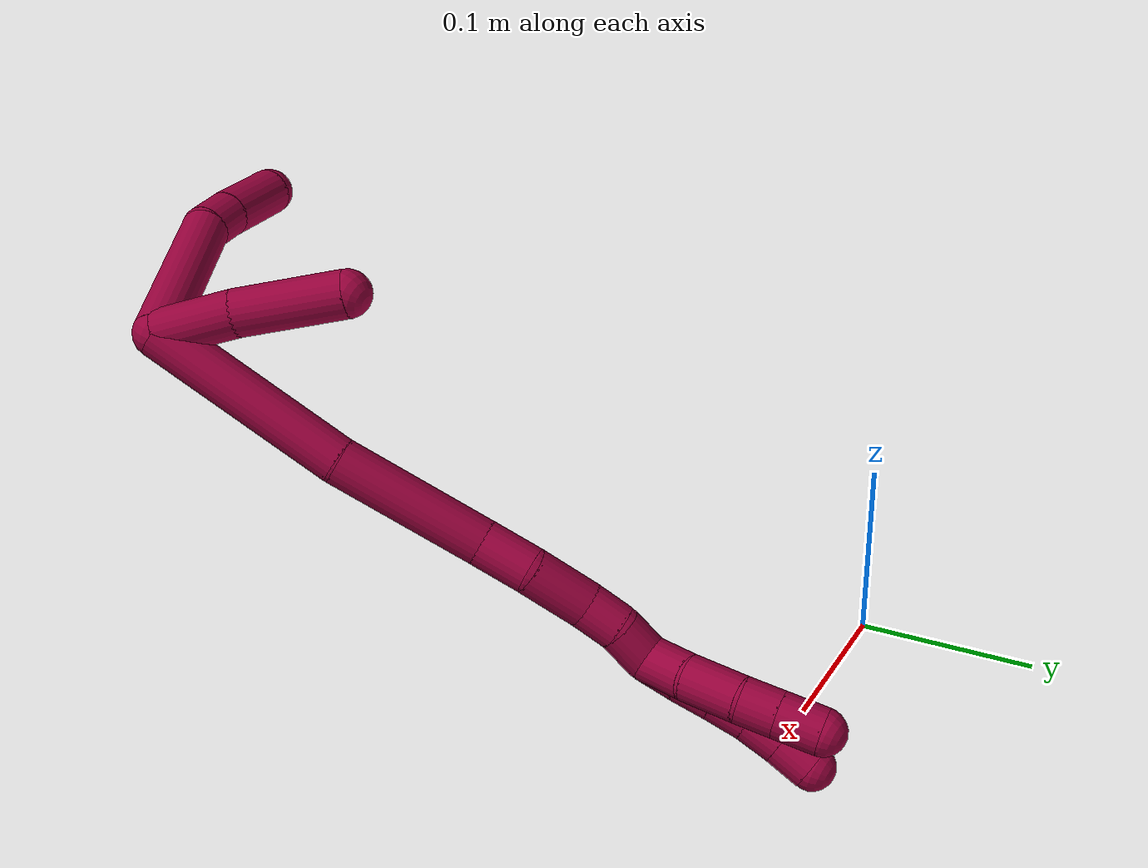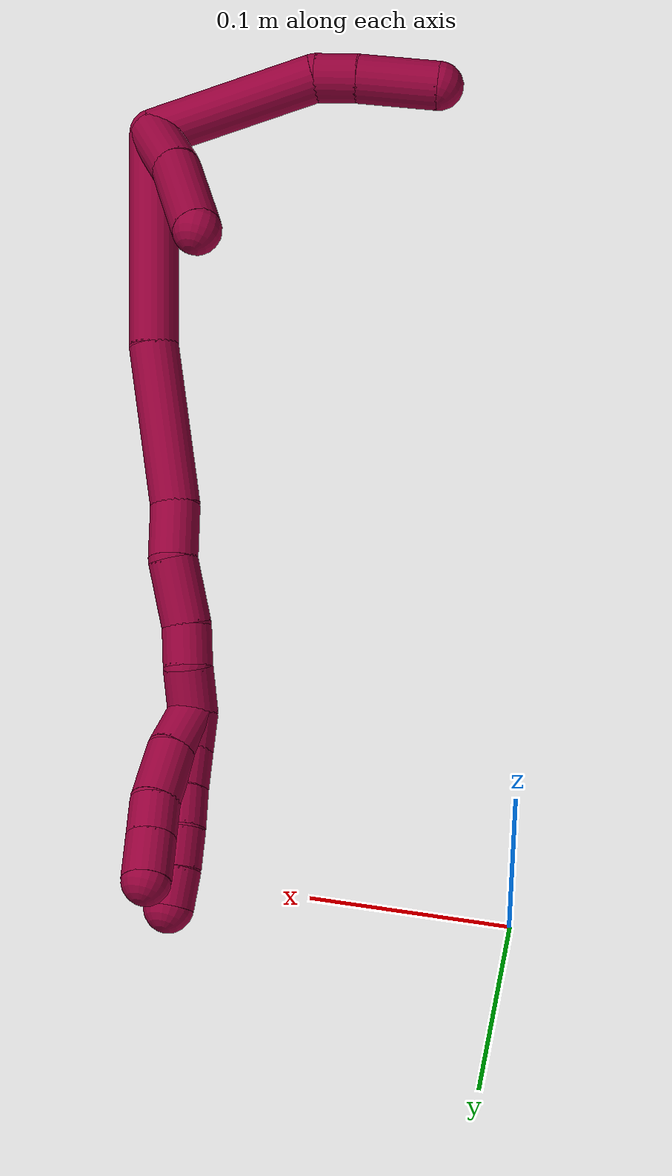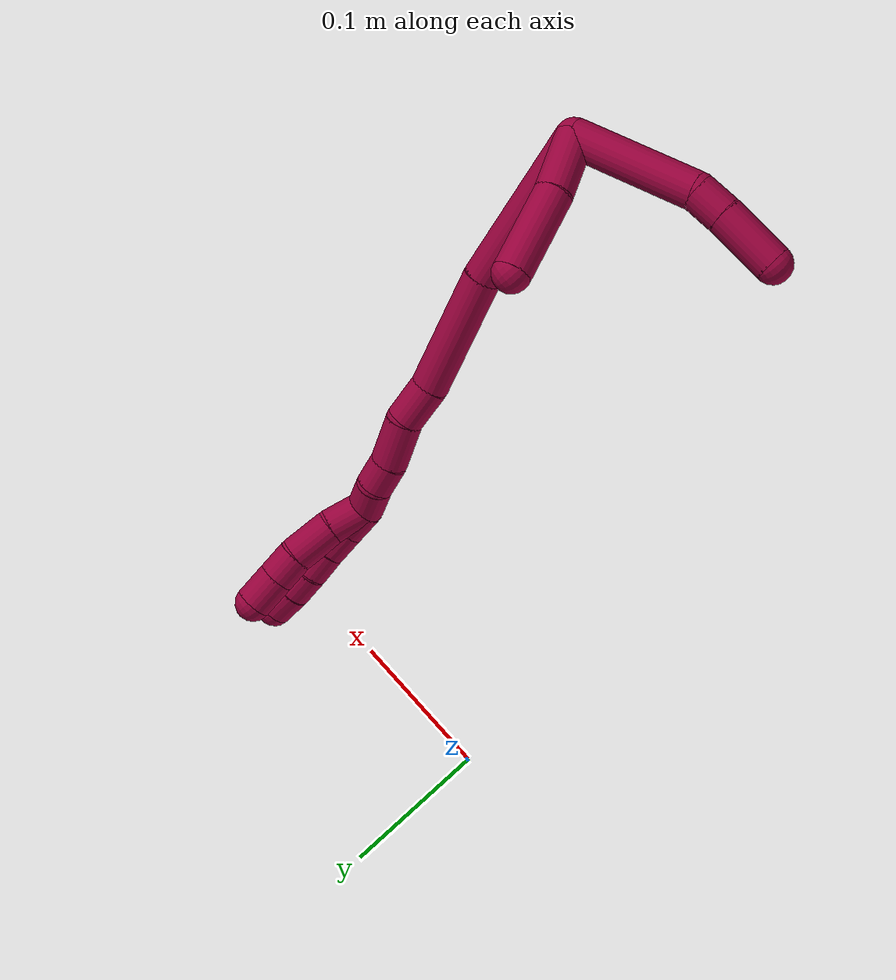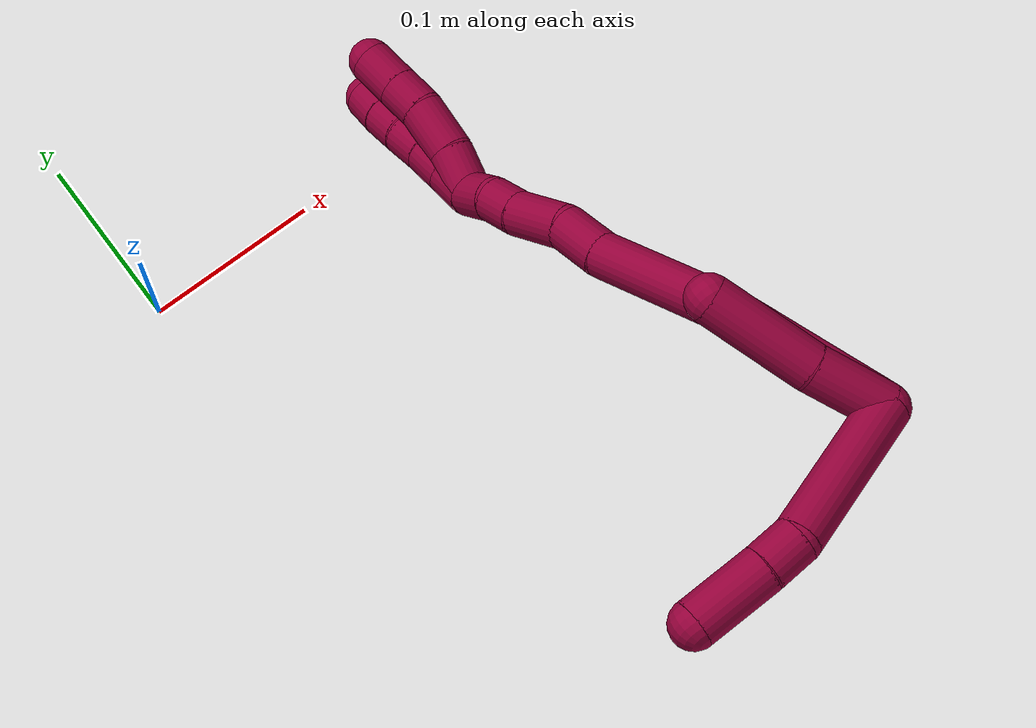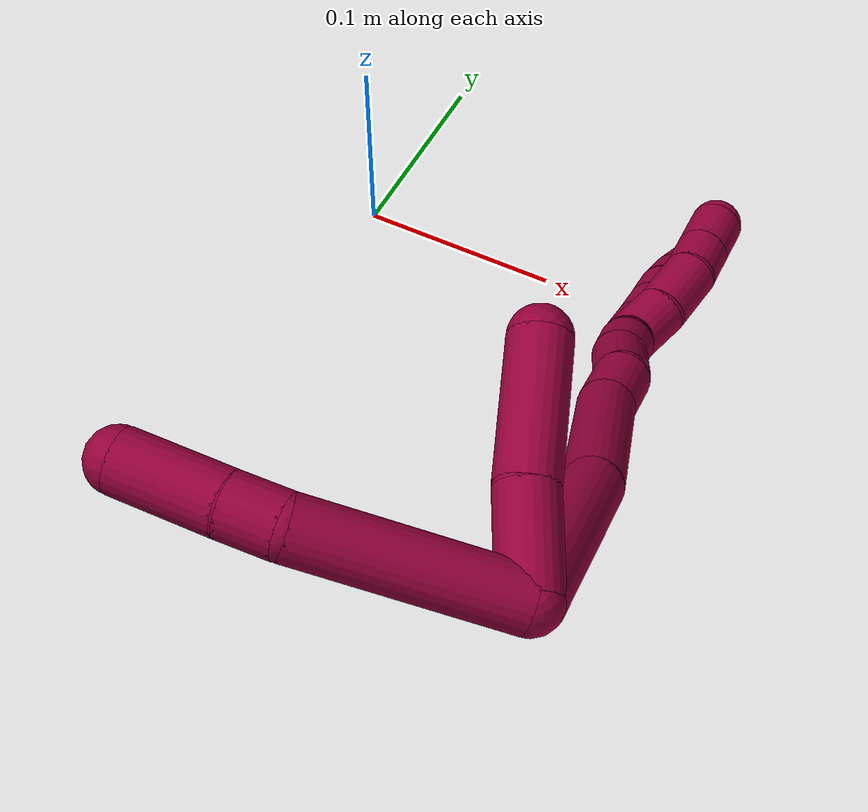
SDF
<sdf version="1.7">
 <world name="default">
  <model name="8">
   <static>0</static>
   <link name="8">
    <collision name="collision-cylinder-e_1_2_8">
     <pose>0.018926 0.034161 0.019226 -1.05818 0.449803 -0.265944</pose>
     <geometry><cylinder><radius>0.0125</radius><length>0.087059</length></cylinder></geometry>
     <surface>
      <friction><ode><mu>1.16</mu><mu2>1.16</mu2><slip1>0</slip1><slip2>0</slip2></ode></friction>
      <contact><ode><kp>1e+06</kp><kd>1</kd><max_vel>0</max_vel><min_depth>0.001</min_depth></ode></contact>
     </surface>
    </collision>
    <visual name="visual-cylinder-e_1_2_8">
     <pose>0.018926 0.034161 0.019226 -1.05818 0.449803 -0.265944</pose>
     <geometry><cylinder><radius>0.0125</radius><length>0.087059</length></cylinder></geometry>
     <material><ambient>0.584314 0 0.227451 1</ambient></material>
    </visual>
    <collision name="collision-cylinder-e_2_8_9">
     <pose>0.041011 0.078433 0.040323 -1.38783 0.298009 -0.248491</pose>
     <geometry><cylinder><radius>0.0125</radius><length>0.021513</length></cylinder></geometry>
     <surface>
      <friction><ode><mu>1.16</mu><mu2>1.16</mu2><slip1>0</slip1><slip2>0</slip2></ode></friction>
      <contact><ode><kp>1e+06</kp><kd>1</kd><max_vel>0</max_vel><min_depth>0.001</min_depth></ode></contact>
     </surface>
    </collision>
    <visual name="visual-cylinder-e_2_8_9">
     <pose>0.041011 0.078433 0.040323 -1.38783 0.298009 -0.248491</pose>
     <geometry><cylinder><radius>0.0125</radius><length>0.021513</length></cylinder></geometry>
     <material><ambient>0.584314 0 0.227451 1</ambient></material>
    </visual>
    <collision name="collision-cylinder-e_3_9_6">
     <pose>0.049573 0.108403 0.044535 -1.45344 0.263928 -0.234925</pose>
     <geometry><cylinder><radius>0.0125</radius><length>0.041428</length></cylinder></geometry>
     <surface>
      <friction><ode><mu>1.16</mu><mu2>1.16</mu2><slip1>0</slip1><slip2>0</slip2></ode></friction>
      <contact><ode><kp>1e+06</kp><kd>1</kd><max_vel>0</max_vel><min_depth>0.001</min_depth></ode></contact>
     </surface>
    </collision>
    <visual name="visual-cylinder-e_3_9_6">
     <pose>0.049573 0.108403 0.044535 -1.45344 0.263928 -0.234925</pose>
     <geometry><cylinder><radius>0.0125</radius><length>0.041428</length></cylinder></geometry>
     <material><ambient>0.584314 0 0.227451 1</ambient></material>
    </visual>
    <collision name="collision-cylinder-e_1_2_10">
     <pose>0.011929 0.007877 -0.014917 -2.65578 0.615526 -1.81726</pose>
     <geometry><cylinder><radius>0.0125</radius><length>0.041321</length></cylinder></geometry>
     <surface>
      <friction><ode><mu>1.16</mu><mu2>1.16</mu2><slip1>0</slip1><slip2>0</slip2></ode></friction>
      <contact><ode><kp>1e+06</kp><kd>1</kd><max_vel>0</max_vel><min_depth>0.001</min_depth></ode></contact>
     </surface>
    </collision>
    <visual name="visual-cylinder-e_1_2_10">
     <pose>0.011929 0.007877 -0.014917 -2.65578 0.615526 -1.81726</pose>
     <geometry><cylinder><radius>0.0125</radius><length>0.041321</length></cylinder></geometry>
     <material><ambient>0.584314 0 0.227451 1</ambient></material>
    </visual>
    <collision name="collision-cylinder-e_2_10_5">
     <pose>0.03933 0.024472 -0.053188 -2.78429 0.555451 -2.01237</pose>
     <geometry><cylinder><radius>0.0125</radius><length>0.058679</length></cylinder></geometry>
     <surface>
      <friction><ode><mu>1.16</mu><mu2>1.16</mu2><slip1>0</slip1><slip2>0</slip2></ode></friction>
      <contact><ode><kp>1e+06</kp><kd>1</kd><max_vel>0</max_vel><min_depth>0.001</min_depth></ode></contact>
     </surface>
    </collision>
    <visual name="visual-cylinder-e_2_10_5">
     <pose>0.03933 0.024472 -0.053188 -2.78429 0.555451 -2.01237</pose>
     <geometry><cylinder><radius>0.0125</radius><length>0.058679</length></cylinder></geometry>
     <material><ambient>0.584314 0 0.227451 1</ambient></material>
    </visual>
    <collision name="collision-cylinder-e_1_2_11">
     <pose>-0.012704 0.016461 -0.051161 -2.8303 -0.232117 1.27797</pose>
     <geometry><cylinder><radius>0.0125</radius><length>0.110451</length></cylinder></geometry>
     <surface>
      <friction><ode><mu>1.16</mu><mu2>1.16</mu2><slip1>0</slip1><slip2>0</slip2></ode></friction>
      <contact><ode><kp>1e+06</kp><kd>1</kd><max_vel>0</max_vel><min_depth>0.001</min_depth></ode></contact>
     </surface>
    </collision>
    <visual name="visual-cylinder-e_1_2_11">
     <pose>-0.012704 0.016461 -0.051161 -2.8303 -0.232117 1.27797</pose>
     <geometry><cylinder><radius>0.0125</radius><length>0.110451</length></cylinder></geometry>
     <material><ambient>0.584314 0 0.227451 1</ambient></material>
    </visual>
    <collision name="collision-cylinder-e_2_11_12">
     <pose>-0.032815 0.050204 -0.139433 -2.70577 -0.178996 0.770077</pose>
     <geometry><cylinder><radius>0.0125</radius><length>0.083203</length></cylinder></geometry>
     <surface>
      <friction><ode><mu>1.16</mu><mu2>1.16</mu2><slip1>0</slip1><slip2>0</slip2></ode></friction>
      <contact><ode><kp>1e+06</kp><kd>1</kd><max_vel>0</max_vel><min_depth>0.001</min_depth></ode></contact>
     </surface>
    </collision>
    <visual name="visual-cylinder-e_2_11_12">
     <pose>-0.032815 0.050204 -0.139433 -2.70577 -0.178996 0.770077</pose>
     <geometry><cylinder><radius>0.0125</radius><length>0.083203</length></cylinder></geometry>
     <material><ambient>0.584314 0 0.227451 1</ambient></material>
    </visual>
    <collision name="collision-cylinder-e_3_12_13">
     <pose>-0.041809 0.070951 -0.190224 -2.89353 -0.111991 0.845069</pose>
     <geometry><cylinder><radius>0.0125</radius><length>0.028405</length></cylinder></geometry>
     <surface>
      <friction><ode><mu>1.16</mu><mu2>1.16</mu2><slip1>0</slip1><slip2>0</slip2></ode></friction>
      <contact><ode><kp>1e+06</kp><kd>1</kd><max_vel>0</max_vel><min_depth>0.001</min_depth></ode></contact>
     </surface>
    </collision>
    <visual name="visual-cylinder-e_3_12_13">
     <pose>-0.041809 0.070951 -0.190224 -2.89353 -0.111991 0.845069</pose>
     <geometry><cylinder><radius>0.0125</radius><length>0.028405</length></cylinder></geometry>
     <material><ambient>0.584314 0 0.227451 1</ambient></material>
    </visual>
    <collision name="collision-cylinder-e_4_13_14">
     <pose>-0.047639 0.082705 -0.218137 -2.6142 -0.25215 0.877841</pose>
     <geometry><cylinder><radius>0.0125</radius><length>0.034015</length></cylinder></geometry>
     <surface>
      <friction><ode><mu>1.16</mu><mu2>1.16</mu2><slip1>0</slip1><slip2>0</slip2></ode></friction>
      <contact><ode><kp>1e+06</kp><kd>1</kd><max_vel>0</max_vel><min_depth>0.001</min_depth></ode></contact>
     </surface>
    </collision>
    <visual name="visual-cylinder-e_4_13_14">
     <pose>-0.047639 0.082705 -0.218137 -2.6142 -0.25215 0.877841</pose>
     <geometry><cylinder><radius>0.0125</radius><length>0.034015</length></cylinder></geometry>
     <material><ambient>0.584314 0 0.227451 1</ambient></material>
    </visual>
    <collision name="collision-cylinder-e_5_14_15">
     <pose>-0.05438 0.09442 -0.241862 -2.79526 -0.242647 1.21744</pose>
     <geometry><cylinder><radius>0.0125</radius><length>0.020794</length></cylinder></geometry>
     <surface>
      <friction><ode><mu>1.16</mu><mu2>1.16</mu2><slip1>0</slip1><slip2>0</slip2></ode></friction>
      <contact><ode><kp>1e+06</kp><kd>1</kd><max_vel>0</max_vel><min_depth>0.001</min_depth></ode></contact>
     </surface>
    </collision>
    <visual name="visual-cylinder-e_5_14_15">
     <pose>-0.05438 0.09442 -0.241862 -2.79526 -0.242647 1.21744</pose>
     <geometry><cylinder><radius>0.0125</radius><length>0.020794</length></cylinder></geometry>
     <material><ambient>0.584314 0 0.227451 1</ambient></material>
    </visual>
    <collision name="collision-cylinder-e_6_15_1">
     <pose>-0.062319 0.10268 -0.260345 -2.64818 -0.489715 1.56297</pose>
     <geometry><cylinder><radius>0.0125</radius><length>0.023133</length></cylinder></geometry>
     <surface>
      <friction><ode><mu>1.16</mu><mu2>1.16</mu2><slip1>0</slip1><slip2>0</slip2></ode></friction>
      <contact><ode><kp>1e+06</kp><kd>1</kd><max_vel>0</max_vel><min_depth>0.001</min_depth></ode></contact>
     </surface>
    </collision>
    <visual name="visual-cylinder-e_6_15_1">
     <pose>-0.062319 0.10268 -0.260345 -2.64818 -0.489715 1.56297</pose>
     <geometry><cylinder><radius>0.0125</radius><length>0.023133</length></cylinder></geometry>
     <material><ambient>0.584314 0 0.227451 1</ambient></material>
    </visual>
    <collision name="collision-cylinder-e_1_1_16">
     <pose>-0.068725 0.109078 -0.279164 -2.98391 -0.096728 1.09933</pose>
     <geometry><cylinder><radius>0.0125</radius><length>0.02</length></cylinder></geometry>
     <surface>
      <friction><ode><mu>1.16</mu><mu2>1.16</mu2><slip1>0</slip1><slip2>0</slip2></ode></friction>
      <contact><ode><kp>1e+06</kp><kd>1</kd><max_vel>0</max_vel><min_depth>0.001</min_depth></ode></contact>
     </surface>
    </collision>
    <visual name="visual-cylinder-e_1_1_16">
     <pose>-0.068725 0.109078 -0.279164 -2.98391 -0.096728 1.09933</pose>
     <geometry><cylinder><radius>0.0125</radius><length>0.02</length></cylinder></geometry>
     <material><ambient>0.584314 0 0.227451 1</ambient></material>
    </visual>
    <collision name="collision-cylinder-e_2_16_17">
     <pose>-0.070189 0.112207 -0.298858 -2.98408 -0.04976 0.610916</pose>
     <geometry><cylinder><radius>0.0125</radius><length>0.02</length></cylinder></geometry>
     <surface>
      <friction><ode><mu>1.16</mu><mu2>1.16</mu2><slip1>0</slip1><slip2>0</slip2></ode></friction>
      <contact><ode><kp>1e+06</kp><kd>1</kd><max_vel>0</max_vel><min_depth>0.001</min_depth></ode></contact>
     </surface>
    </collision>
    <visual name="visual-cylinder-e_2_16_17">
     <pose>-0.070189 0.112207 -0.298858 -2.98408 -0.04976 0.610916</pose>
     <geometry><cylinder><radius>0.0125</radius><length>0.02</length></cylinder></geometry>
     <material><ambient>0.584314 0 0.227451 1</ambient></material>
    </visual>
    <collision name="collision-cylinder-e_3_17_18">
     <pose>-0.071742 0.115888 -0.318439 -2.92736 -0.105833 0.915389</pose>
     <geometry><cylinder><radius>0.0125</radius><length>0.02</length></cylinder></geometry>
     <surface>
      <friction><ode><mu>1.16</mu><mu2>1.16</mu2><slip1>0</slip1><slip2>0</slip2></ode></friction>
      <contact><ode><kp>1e+06</kp><kd>1</kd><max_vel>0</max_vel><min_depth>0.001</min_depth></ode></contact>
     </surface>
    </collision>
    <visual name="visual-cylinder-e_3_17_18">
     <pose>-0.071742 0.115888 -0.318439 -2.92736 -0.105833 0.915389</pose>
     <geometry><cylinder><radius>0.0125</radius><length>0.02</length></cylinder></geometry>
     <material><ambient>0.584314 0 0.227451 1</ambient></material>
    </visual>
    <collision name="collision-cylinder-e_4_18_19">
     <pose>-0.074923 0.119857 -0.337749 -2.95058 -0.21409 1.68536</pose>
     <geometry><cylinder><radius>0.0125</radius><length>0.02</length></cylinder></geometry>
     <surface>
      <friction><ode><mu>1.16</mu><mu2>1.16</mu2><slip1>0</slip1><slip2>0</slip2></ode></friction>
      <contact><ode><kp>1e+06</kp><kd>1</kd><max_vel>0</max_vel><min_depth>0.001</min_depth></ode></contact>
     </surface>
    </collision>
    <visual name="visual-cylinder-e_4_18_19">
     <pose>-0.074923 0.119857 -0.337749 -2.95058 -0.21409 1.68536</pose>
     <geometry><cylinder><radius>0.0125</radius><length>0.02</length></cylinder></geometry>
     <material><ambient>0.584314 0 0.227451 1</ambient></material>
    </visual>
    <collision name="collision-cylinder-e_5_19_4">
     <pose>-0.079421 0.122848 -0.356991 -3.02446 -0.239601 2.23508</pose>
     <geometry><cylinder><radius>0.0125</radius><length>0.02</length></cylinder></geometry>
     <surface>
      <friction><ode><mu>1.16</mu><mu2>1.16</mu2><slip1>0</slip1><slip2>0</slip2></ode></friction>
      <contact><ode><kp>1e+06</kp><kd>1</kd><max_vel>0</max_vel><min_depth>0.001</min_depth></ode></contact>
     </surface>
    </collision>
    <visual name="visual-cylinder-e_5_19_4">
     <pose>-0.079421 0.122848 -0.356991 -3.02446 -0.239601 2.23508</pose>
     <geometry><cylinder><radius>0.0125</radius><length>0.02</length></cylinder></geometry>
     <material><ambient>0.584314 0 0.227451 1</ambient></material>
    </visual>
    <collision name="collision-cylinder-e_1_1_20">
     <pose>-0.065623 0.104863 -0.281886 2.93339 0.165024 1.33914</pose>
     <geometry><cylinder><radius>0.0125</radius><length>0.02601</length></cylinder></geometry>
     <surface>
      <friction><ode><mu>1.16</mu><mu2>1.16</mu2><slip1>0</slip1><slip2>0</slip2></ode></friction>
      <contact><ode><kp>1e+06</kp><kd>1</kd><max_vel>0</max_vel><min_depth>0.001</min_depth></ode></contact>
     </surface>
    </collision>
    <visual name="visual-cylinder-e_1_1_20">
     <pose>-0.065623 0.104863 -0.281886 2.93339 0.165024 1.33914</pose>
     <geometry><cylinder><radius>0.0125</radius><length>0.02601</length></cylinder></geometry>
     <material><ambient>0.584314 0 0.227451 1</ambient></material>
    </visual>
    <collision name="collision-cylinder-e_2_20_21">
     <pose>-0.061313 0.10169 -0.309387 3.10672 0.144279 2.66806</pose>
     <geometry><cylinder><radius>0.0125</radius><length>0.030233</length></cylinder></geometry>
     <surface>
      <friction><ode><mu>1.16</mu><mu2>1.16</mu2><slip1>0</slip1><slip2>0</slip2></ode></friction>
      <contact><ode><kp>1e+06</kp><kd>1</kd><max_vel>0</max_vel><min_depth>0.001</min_depth></ode></contact>
     </surface>
    </collision>
    <visual name="visual-cylinder-e_2_20_21">
     <pose>-0.061313 0.10169 -0.309387 3.10672 0.144279 2.66806</pose>
     <geometry><cylinder><radius>0.0125</radius><length>0.030233</length></cylinder></geometry>
     <material><ambient>0.584314 0 0.227451 1</ambient></material>
    </visual>
    <collision name="collision-cylinder-e_3_21_22">
     <pose>-0.058193 0.102659 -0.334233 -2.99205 0.094377 -1.12492</pose>
     <geometry><cylinder><radius>0.0125</radius><length>0.020104</length></cylinder></geometry>
     <surface>
      <friction><ode><mu>1.16</mu><mu2>1.16</mu2><slip1>0</slip1><slip2>0</slip2></ode></friction>
      <contact><ode><kp>1e+06</kp><kd>1</kd><max_vel>0</max_vel><min_depth>0.001</min_depth></ode></contact>
     </surface>
    </collision>
    <visual name="visual-cylinder-e_3_21_22">
     <pose>-0.058193 0.102659 -0.334233 -2.99205 0.094377 -1.12492</pose>
     <geometry><cylinder><radius>0.0125</radius><length>0.020104</length></cylinder></geometry>
     <material><ambient>0.584314 0 0.227451 1</ambient></material>
    </visual>
    <collision name="collision-cylinder-e_4_22_3">
     <pose>-0.056096 0.105877 -0.355772 -2.99437 0.097338 -1.16743</pose>
     <geometry><cylinder><radius>0.0125</radius><length>0.023653</length></cylinder></geometry>
     <surface>
      <friction><ode><mu>1.16</mu><mu2>1.16</mu2><slip1>0</slip1><slip2>0</slip2></ode></friction>
      <contact><ode><kp>1e+06</kp><kd>1</kd><max_vel>0</max_vel><min_depth>0.001</min_depth></ode></contact>
     </surface>
    </collision>
    <visual name="visual-cylinder-e_4_22_3">
     <pose>-0.056096 0.105877 -0.355772 -2.99437 0.097338 -1.16743</pose>
     <geometry><cylinder><radius>0.0125</radius><length>0.023653</length></cylinder></geometry>
     <material><ambient>0.584314 0 0.227451 1</ambient></material>
    </visual>
    <collision name="collision-sphere-3">
     <pose>-0.054947 0.107604 -0.367415 0 -0 0</pose>
     <geometry><sphere><radius>0.0125</radius></sphere></geometry>
     <surface>
      <friction><ode><mu>1.16</mu><mu2>1.16</mu2><slip1>0</slip1><slip2>0</slip2></ode></friction>
      <contact><ode><kp>1e+06</kp><kd>1</kd><max_vel>0</max_vel><min_depth>0.001</min_depth></ode></contact>
     </surface>
    </collision>
    <visual name="visual-sphere-3">
     <pose>-0.054947 0.107604 -0.367415 0 -0 0</pose>
     <geometry><sphere><radius>0.0125</radius></sphere></geometry>
     <material><ambient>0.584314 0 0.227451 1</ambient></material>
    </visual>
    <collision name="collision-sphere-22">
     <pose>-0.057245 0.10415 -0.344129 0 -0 0</pose>
     <geometry><sphere><radius>0.0125</radius></sphere></geometry>
     <surface>
      <friction><ode><mu>1.16</mu><mu2>1.16</mu2><slip1>0</slip1><slip2>0</slip2></ode></friction>
      <contact><ode><kp>1e+06</kp><kd>1</kd><max_vel>0</max_vel><min_depth>0.001</min_depth></ode></contact>
     </surface>
    </collision>
    <visual name="visual-sphere-22">
     <pose>-0.057245 0.10415 -0.344129 0 -0 0</pose>
     <geometry><sphere><radius>0.0125</radius></sphere></geometry>
     <material><ambient>0.584314 0 0.227451 1</ambient></material>
    </visual>
    <collision name="collision-sphere-21">
     <pose>-0.05914 0.101168 -0.324337 0 -0 0</pose>
     <geometry><sphere><radius>0.0125</radius></sphere></geometry>
     <surface>
      <friction><ode><mu>1.16</mu><mu2>1.16</mu2><slip1>0</slip1><slip2>0</slip2></ode></friction>
      <contact><ode><kp>1e+06</kp><kd>1</kd><max_vel>0</max_vel><min_depth>0.001</min_depth></ode></contact>
     </surface>
    </collision>
    <visual name="visual-sphere-21">
     <pose>-0.05914 0.101168 -0.324337 0 -0 0</pose>
     <geometry><sphere><radius>0.0125</radius></sphere></geometry>
     <material><ambient>0.584314 0 0.227451 1</ambient></material>
    </visual>
    <collision name="collision-sphere-20">
     <pose>-0.063487 0.102211 -0.294437 0 -0 0</pose>
     <geometry><sphere><radius>0.0125</radius></sphere></geometry>
     <surface>
      <friction><ode><mu>1.16</mu><mu2>1.16</mu2><slip1>0</slip1><slip2>0</slip2></ode></friction>
      <contact><ode><kp>1e+06</kp><kd>1</kd><max_vel>0</max_vel><min_depth>0.001</min_depth></ode></contact>
     </surface>
    </collision>
    <visual name="visual-sphere-20">
     <pose>-0.063487 0.102211 -0.294437 0 -0 0</pose>
     <geometry><sphere><radius>0.0125</radius></sphere></geometry>
     <material><ambient>0.584314 0 0.227451 1</ambient></material>
    </visual>
    <collision name="collision-sphere-4">
     <pose>-0.081794 0.123983 -0.366639 0 -0 0</pose>
     <geometry><sphere><radius>0.0125</radius></sphere></geometry>
     <surface>
      <friction><ode><mu>1.16</mu><mu2>1.16</mu2><slip1>0</slip1><slip2>0</slip2></ode></friction>
      <contact><ode><kp>1e+06</kp><kd>1</kd><max_vel>0</max_vel><min_depth>0.001</min_depth></ode></contact>
     </surface>
    </collision>
    <visual name="visual-sphere-4">
     <pose>-0.081794 0.123983 -0.366639 0 -0 0</pose>
     <geometry><sphere><radius>0.0125</radius></sphere></geometry>
     <material><ambient>0.584314 0 0.227451 1</ambient></material>
    </visual>
    <collision name="collision-sphere-5">
     <pose>0.054801 0.03319 -0.076542 0 -0 0</pose>
     <geometry><sphere><radius>0.0125</radius></sphere></geometry>
     <surface>
      <friction><ode><mu>1.16</mu><mu2>1.16</mu2><slip1>0</slip1><slip2>0</slip2></ode></friction>
      <contact><ode><kp>1e+06</kp><kd>1</kd><max_vel>0</max_vel><min_depth>0.001</min_depth></ode></contact>
     </surface>
    </collision>
    <visual name="visual-sphere-5">
     <pose>0.054801 0.03319 -0.076542 0 -0 0</pose>
     <geometry><sphere><radius>0.0125</radius></sphere></geometry>
     <material><ambient>0.584314 0 0.227451 1</ambient></material>
    </visual>
    <collision name="collision-sphere-10">
     <pose>0.023858 0.015753 -0.029834 0 -0 0</pose>
     <geometry><sphere><radius>0.0125</radius></sphere></geometry>
     <surface>
      <friction><ode><mu>1.16</mu><mu2>1.16</mu2><slip1>0</slip1><slip2>0</slip2></ode></friction>
      <contact><ode><kp>1e+06</kp><kd>1</kd><max_vel>0</max_vel><min_depth>0.001</min_depth></ode></contact>
     </surface>
    </collision>
    <visual name="visual-sphere-10">
     <pose>0.023858 0.015753 -0.029834 0 -0 0</pose>
     <geometry><sphere><radius>0.0125</radius></sphere></geometry>
     <material><ambient>0.584314 0 0.227451 1</ambient></material>
    </visual>
    <collision name="collision-sphere-6">
     <pose>0.054976 0.128262 0.046876 0 -0 0</pose>
     <geometry><sphere><radius>0.0125</radius></sphere></geometry>
     <surface>
      <friction><ode><mu>1.16</mu><mu2>1.16</mu2><slip1>0</slip1><slip2>0</slip2></ode></friction>
      <contact><ode><kp>1e+06</kp><kd>1</kd><max_vel>0</max_vel><min_depth>0.001</min_depth></ode></contact>
     </surface>
    </collision>
    <visual name="visual-sphere-6">
     <pose>0.054976 0.128262 0.046876 0 -0 0</pose>
     <geometry><sphere><radius>0.0125</radius></sphere></geometry>
     <material><ambient>0.584314 0 0.227451 1</ambient></material>
    </visual>
    <collision name="collision-sphere-9">
     <pose>0.044169 0.088544 0.042194 0 -0 0</pose>
     <geometry><sphere><radius>0.0125</radius></sphere></geometry>
     <surface>
      <friction><ode><mu>1.16</mu><mu2>1.16</mu2><slip1>0</slip1><slip2>0</slip2></ode></friction>
      <contact><ode><kp>1e+06</kp><kd>1</kd><max_vel>0</max_vel><min_depth>0.001</min_depth></ode></contact>
     </surface>
    </collision>
    <visual name="visual-sphere-9">
     <pose>0.044169 0.088544 0.042194 0 -0 0</pose>
     <geometry><sphere><radius>0.0125</radius></sphere></geometry>
     <material><ambient>0.584314 0 0.227451 1</ambient></material>
    </visual>
    <collision name="collision-sphere-2">
     <geometry><sphere><radius>0.0125</radius></sphere></geometry>
     <surface>
      <friction><ode><mu>1.16</mu><mu2>1.16</mu2><slip1>0</slip1><slip2>0</slip2></ode></friction>
      <contact><ode><kp>1e+06</kp><kd>1</kd><max_vel>0</max_vel><min_depth>0.001</min_depth></ode></contact>
     </surface>
    </collision>
    <visual name="visual-sphere-2">
     <geometry><sphere><radius>0.0125</radius></sphere></geometry>
     <material><ambient>0.584314 0 0.227451 1</ambient></material>
    </visual>
    <collision name="collision-sphere-19">
     <pose>-0.077048 0.121713 -0.347343 0 -0 0</pose>
     <geometry><sphere><radius>0.0125</radius></sphere></geometry>
     <surface>
      <friction><ode><mu>1.16</mu><mu2>1.16</mu2><slip1>0</slip1><slip2>0</slip2></ode></friction>
      <contact><ode><kp>1e+06</kp><kd>1</kd><max_vel>0</max_vel><min_depth>0.001</min_depth></ode></contact>
     </surface>
    </collision>
    <visual name="visual-sphere-19">
     <pose>-0.077048 0.121713 -0.347343 0 -0 0</pose>
     <geometry><sphere><radius>0.0125</radius></sphere></geometry>
     <material><ambient>0.584314 0 0.227451 1</ambient></material>
    </visual>
    <collision name="collision-sphere-8">
     <pose>0.037852 0.068322 0.038452 0 -0 0</pose>
     <geometry><sphere><radius>0.0125</radius></sphere></geometry>
     <surface>
      <friction><ode><mu>1.16</mu><mu2>1.16</mu2><slip1>0</slip1><slip2>0</slip2></ode></friction>
      <contact><ode><kp>1e+06</kp><kd>1</kd><max_vel>0</max_vel><min_depth>0.001</min_depth></ode></contact>
     </surface>
    </collision>
    <visual name="visual-sphere-8">
     <pose>0.037852 0.068322 0.038452 0 -0 0</pose>
     <geometry><sphere><radius>0.0125</radius></sphere></geometry>
     <material><ambient>0.584314 0 0.227451 1</ambient></material>
    </visual>
    <collision name="collision-sphere-11">
     <pose>-0.025408 0.032922 -0.102323 0 -0 0</pose>
     <geometry><sphere><radius>0.0125</radius></sphere></geometry>
     <surface>
      <friction><ode><mu>1.16</mu><mu2>1.16</mu2><slip1>0</slip1><slip2>0</slip2></ode></friction>
      <contact><ode><kp>1e+06</kp><kd>1</kd><max_vel>0</max_vel><min_depth>0.001</min_depth></ode></contact>
     </surface>
    </collision>
    <visual name="visual-sphere-11">
     <pose>-0.025408 0.032922 -0.102323 0 -0 0</pose>
     <geometry><sphere><radius>0.0125</radius></sphere></geometry>
     <material><ambient>0.584314 0 0.227451 1</ambient></material>
    </visual>
    <collision name="collision-sphere-12">
     <pose>-0.040221 0.067486 -0.176543 0 -0 0</pose>
     <geometry><sphere><radius>0.0125</radius></sphere></geometry>
     <surface>
      <friction><ode><mu>1.16</mu><mu2>1.16</mu2><slip1>0</slip1><slip2>0</slip2></ode></friction>
      <contact><ode><kp>1e+06</kp><kd>1</kd><max_vel>0</max_vel><min_depth>0.001</min_depth></ode></contact>
     </surface>
    </collision>
    <visual name="visual-sphere-12">
     <pose>-0.040221 0.067486 -0.176543 0 -0 0</pose>
     <geometry><sphere><radius>0.0125</radius></sphere></geometry>
     <material><ambient>0.584314 0 0.227451 1</ambient></material>
    </visual>
    <collision name="collision-sphere-13">
     <pose>-0.043396 0.074416 -0.203905 0 -0 0</pose>
     <geometry><sphere><radius>0.0125</radius></sphere></geometry>
     <surface>
      <friction><ode><mu>1.16</mu><mu2>1.16</mu2><slip1>0</slip1><slip2>0</slip2></ode></friction>
      <contact><ode><kp>1e+06</kp><kd>1</kd><max_vel>0</max_vel><min_depth>0.001</min_depth></ode></contact>
     </surface>
    </collision>
    <visual name="visual-sphere-13">
     <pose>-0.043396 0.074416 -0.203905 0 -0 0</pose>
     <geometry><sphere><radius>0.0125</radius></sphere></geometry>
     <material><ambient>0.584314 0 0.227451 1</ambient></material>
    </visual>
    <collision name="collision-sphere-14">
     <pose>-0.051882 0.090994 -0.232369 0 -0 0</pose>
     <geometry><sphere><radius>0.0125</radius></sphere></geometry>
     <surface>
      <friction><ode><mu>1.16</mu><mu2>1.16</mu2><slip1>0</slip1><slip2>0</slip2></ode></friction>
      <contact><ode><kp>1e+06</kp><kd>1</kd><max_vel>0</max_vel><min_depth>0.001</min_depth></ode></contact>
     </surface>
    </collision>
    <visual name="visual-sphere-14">
     <pose>-0.051882 0.090994 -0.232369 0 -0 0</pose>
     <geometry><sphere><radius>0.0125</radius></sphere></geometry>
     <material><ambient>0.584314 0 0.227451 1</ambient></material>
    </visual>
    <collision name="collision-sphere-15">
     <pose>-0.056878 0.097846 -0.251355 0 -0 0</pose>
     <geometry><sphere><radius>0.0125</radius></sphere></geometry>
     <surface>
      <friction><ode><mu>1.16</mu><mu2>1.16</mu2><slip1>0</slip1><slip2>0</slip2></ode></friction>
      <contact><ode><kp>1e+06</kp><kd>1</kd><max_vel>0</max_vel><min_depth>0.001</min_depth></ode></contact>
     </surface>
    </collision>
    <visual name="visual-sphere-15">
     <pose>-0.056878 0.097846 -0.251355 0 -0 0</pose>
     <geometry><sphere><radius>0.0125</radius></sphere></geometry>
     <material><ambient>0.584314 0 0.227451 1</ambient></material>
    </visual>
    <collision name="collision-sphere-1">
     <pose>-0.06776 0.107515 -0.269334 0 -0 0</pose>
     <geometry><sphere><radius>0.0125</radius></sphere></geometry>
     <surface>
      <friction><ode><mu>1.16</mu><mu2>1.16</mu2><slip1>0</slip1><slip2>0</slip2></ode></friction>
      <contact><ode><kp>1e+06</kp><kd>1</kd><max_vel>0</max_vel><min_depth>0.001</min_depth></ode></contact>
     </surface>
    </collision>
    <visual name="visual-sphere-1">
     <pose>-0.06776 0.107515 -0.269334 0 -0 0</pose>
     <geometry><sphere><radius>0.0125</radius></sphere></geometry>
     <material><ambient>0.584314 0 0.227451 1</ambient></material>
    </visual>
    <collision name="collision-sphere-18">
     <pose>-0.072799 0.118002 -0.328155 0 -0 0</pose>
     <geometry><sphere><radius>0.0125</radius></sphere></geometry>
     <surface>
      <friction><ode><mu>1.16</mu><mu2>1.16</mu2><slip1>0</slip1><slip2>0</slip2></ode></friction>
      <contact><ode><kp>1e+06</kp><kd>1</kd><max_vel>0</max_vel><min_depth>0.001</min_depth></ode></contact>
     </surface>
    </collision>
    <visual name="visual-sphere-18">
     <pose>-0.072799 0.118002 -0.328155 0 -0 0</pose>
     <geometry><sphere><radius>0.0125</radius></sphere></geometry>
     <material><ambient>0.584314 0 0.227451 1</ambient></material>
    </visual>
    <collision name="collision-sphere-16">
     <pose>-0.069691 0.110641 -0.288994 0 -0 0</pose>
     <geometry><sphere><radius>0.0125</radius></sphere></geometry>
     <surface>
      <friction><ode><mu>1.16</mu><mu2>1.16</mu2><slip1>0</slip1><slip2>0</slip2></ode></friction>
      <contact><ode><kp>1e+06</kp><kd>1</kd><max_vel>0</max_vel><min_depth>0.001</min_depth></ode></contact>
     </surface>
    </collision>
    <visual name="visual-sphere-16">
     <pose>-0.069691 0.110641 -0.288994 0 -0 0</pose>
     <geometry><sphere><radius>0.0125</radius></sphere></geometry>
     <material><ambient>0.584314 0 0.227451 1</ambient></material>
    </visual>
    <collision name="collision-sphere-17">
     <pose>-0.070686 0.113774 -0.308722 0 -0 0</pose>
     <geometry><sphere><radius>0.0125</radius></sphere></geometry>
     <surface>
      <friction><ode><mu>1.16</mu><mu2>1.16</mu2><slip1>0</slip1><slip2>0</slip2></ode></friction>
      <contact><ode><kp>1e+06</kp><kd>1</kd><max_vel>0</max_vel><min_depth>0.001</min_depth></ode></contact>
     </surface>
    </collision>
    <visual name="visual-sphere-17">
     <pose>-0.070686 0.113774 -0.308722 0 -0 0</pose>
     <geometry><sphere><radius>0.0125</radius></sphere></geometry>
     <material><ambient>0.584314 0 0.227451 1</ambient></material>
    </visual>
    <inertial>
     <pose>-0.020649 0.064058 -0.13883 0 -0 0</pose>
     <mass>0.75</mass>
     <inertia>
      <ixx>0.000252</ixx>
      <ixy>0</ixy>
      <ixz>0</ixz>
      <iyy>0.000135</iyy>
      <iyz>0</iyz>
      <izz>-0.000167</izz>
     </inertia>
    </inertial>
   </link>
   <pose>0.235392 -0.30369 0.216737 -0.811096 -1.19264 2.33743</pose>
  </model>
 </world>
</sdf>
